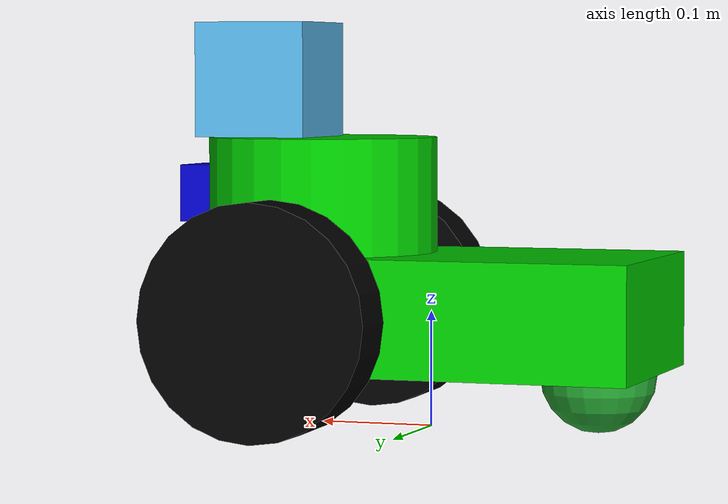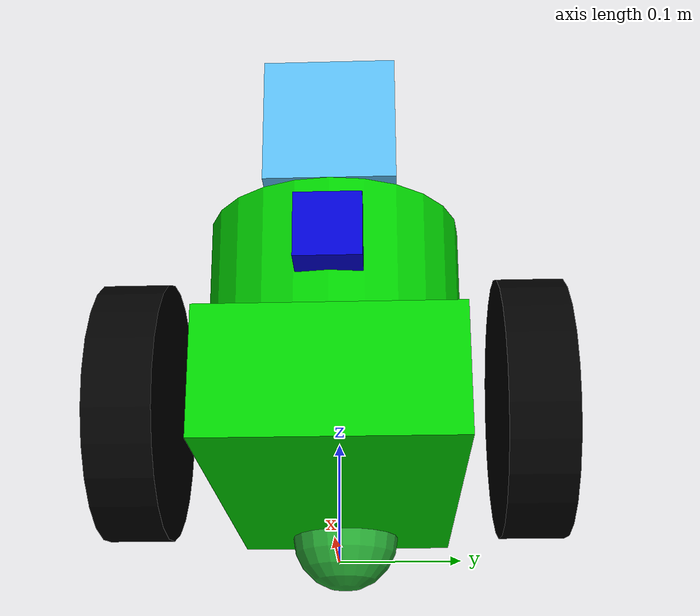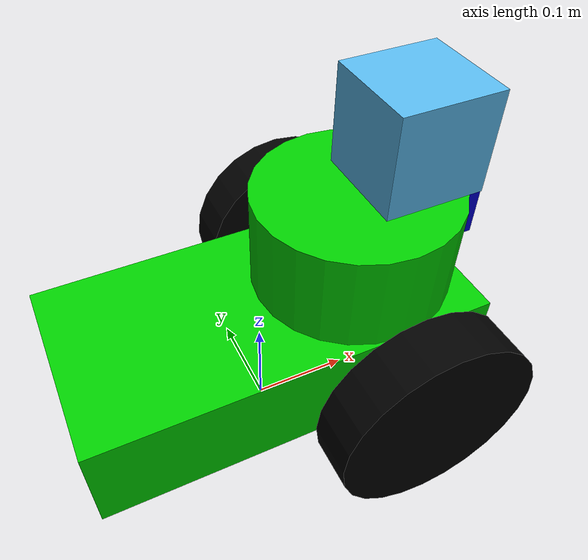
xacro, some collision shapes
<?xml version='1.0'?>

<robot name="uner_bot" xmlns:xacro="http://www.ros.org/wiki/xacro">

  <material name="Blue">
    <color rgba="0.0 0.0 0.8 1.0"/>
  </material>
  <material name="Red">
    <color rgba="0.8 0.0 0.0 1.0"/>
  </material>
  <material name="Green">
    <color rgba="0.0 0.8 0.0 1.0"/>
  </material>
  <material name="Black">
    <color rgba="0.0 0 0.0 1.0"/>
  </material>

  <xacro:include filename="$(find uner_bot)/urdf/UNER_bot.gazebo" />

  <link name="robot_footprint"></link>

  <joint name="robot_footprint_joint" type="fixed">
    <origin xyz="0 0 0.1" rpy="0 0 0" />
    <parent link="robot_footprint"/>
    <child link="chassis" />
  </joint>

  <joint type="continuous" name="left_wheel_hinge">
    <origin xyz="0.1 0.15 0" rpy="0 0 0"/>
    <child link="left_wheel"/>
    <parent link="chassis"/>
    <axis xyz="0 1 0" rpy="0 0 0"/>
    <limit effort="10000" velocity="1000"/>
    <joint_properties damping="1.0" friction="1.0"/>
  </joint>

  <joint type="continuous" name="right_wheel_hinge">
    <origin xyz="0.1 -0.15 0" rpy="0 0 0"/>
    <child link="right_wheel"/>
    <parent link="chassis"/>
    <axis xyz="0 1 0" rpy="0 0 0"/>
    <limit effort="10000" velocity="1000"/>
    <joint_properties damping="1.0" friction="1.0"/>
  </joint>

  <joint name="tower_joint" type="fixed">
    <origin xyz="0 0 0" rpy="0 0 0" />
    <parent link="chassis"/>
    <child link="tower" />
  </joint>

  <joint type="fixed" name="camera_joint">
    <origin xyz="0.2 0 0.1" rpy="0 0 0"/>
    <child link="camera_link"/>
    <parent link="tower"/>
  </joint>

  <joint type="fixed" name="hokuyo_joint">
    <origin xyz=".15 0 .2" rpy="0 0 0"/>
    <child link="hokuyo"/>
    <parent link="tower"/>
  </joint>

  <link name="hokuyo">
    <inertial>
      <mass value="0.1"/>
      <origin xyz="0 0 0" rpy="0 0 0"/>
      <inertia
              ixx="1e-6" ixy="0" ixz="0"
              iyy="1e-6" iyz="0"
              izz="1e-6"
      />
    </inertial>

    <collision name='hokuyo_collision'>
      <origin xyz="0 0 0" rpy="0 0 0"/>
      <geometry>
        <box size="0.1 0.1 0.1"/>
      </geometry>
    </collision>

    <visual name='hokuyo_visual'>
      <origin xyz="0 0 0" rpy="0 0 0"/>
      <geometry>
        <mesh filename="package://uner_bot/meshes/hokuyo.dae"/>
      </geometry>
    </visual>
  </link>

  <link name="camera_link">
    <inertial>
      <mass value="0.1"/>
      <origin xyz="0 0 0" rpy="0 0 0"/>
      <inertia
              ixx="1e-6" ixy="0" ixz="0"
              iyy="1e-6" iyz="0"
              izz="1e-6"
      />
    </inertial>

    <collision name='camera_collision'>
      <origin xyz="0 0 0" rpy="0 0 0"/>
      <geometry>
        <box size="0.05 0.05 0.05"/>
      </geometry>
    </collision>

    <visual name='camera_visual'>
      <origin xyz="0 0 0" rpy="0 0 0"/>
      <geometry>
        <box size="0.05 0.05 0.05"/>
      </geometry>
      <material name="Blue"/>
    </visual>
  </link>

    <link name="camera_rgbd_frame">
    <inertial>
      <mass value="0.0001" />
      <origin xyz="0 0 0" />
      <inertia ixx="0.0001" ixy="0.0" ixz="0.0"
               iyy="0.0001" iyz="0.0"
               izz="0.0001" />
    </inertial>
  </link>

  <joint name="camera_rgbd_joint" type="fixed">
    <origin xyz="0.2 0 0.1" rpy="-1.5707  0.0 -1.5707" />
       <!--origin xyz="0.04 0 0.26" rpy="0 0 0" /-->
    <parent link="camera_link" />
    <child link="camera_rgbd_frame" />
  </joint>

  <link name="tower">
    <inertial>
      <mass value="3.0"/>
      <origin xyz="0.1 0 0.1" rpy="0 0 0"/>
      <inertia
              ixx="0.1" ixy="0" ixz="0"
              iyy="0.1" iyz="0"
              izz="0.1"
      />
    </inertial>

    <collision name='tower_collision'>
      <origin xyz="0.1 0 0.1" rpy="0 0 0"/>
      <geometry>
        <cylinder radius=".1" length= ".1"/>
      </geometry>
    </collision>

    <visual name='tower_visual'>
      <origin xyz="0.1 0 0.1" rpy="0 0 0"/>
      <geometry>
        <cylinder radius=".1" length= ".1"/>
      </geometry>
      <material name="Green"/>
    </visual>
  </link>

  <link name="left_wheel">
    <inertial>
      <mass value="5.0"/>
      <origin xyz="0 0 0" rpy="0 1.5707 1.5707"/>
      <inertia
              ixx="0.1" ixy="0" ixz="0"
              iyy="0.1" iyz="0"
              izz="0.1"
      />
    </inertial>

    <collision name='left_wheel_collision'>
      <origin xyz="0 0 0" rpy="0 1.5707 1.5707"/>
      <geometry>
        <cylinder radius="0.1" length="0.05"/>
      </geometry>
    </collision>

    <visual name='left_wheel_visual'>
      <origin xyz="0 0 0" rpy="0 1.5707 1.5707"/>
      <geometry>
        <cylinder radius="0.1" length="0.05"/>
      </geometry>
      <material name="Black"/>
    </visual>
  </link>

  <link name="right_wheel">
    <inertial>
      <mass value="5.0"/>
      <origin xyz="0 0 0" rpy="0 1.5707 1.5707"/>
      <inertia
              ixx="0.1" ixy="0" ixz="0"
              iyy="0.1" iyz="0"
              izz="0.1"
      />
    </inertial>

    <collision name='right_wheel_collision'>
      <origin xyz="0 0 0" rpy="0 1.5707 1.5707"/>
      <geometry>
        <cylinder radius="0.1" length="0.05"/>
      </geometry>
    </collision>

    <visual name='right_wheel_visual'>
      <origin xyz="0 0 0" rpy="0 1.5707 1.5707"/>
      <geometry>
        <cylinder radius="0.1" length="0.05"/>
      </geometry>
      <material name="Black"/>
    </visual>
  </link>

  <link name='chassis'>
    <pose>0 0 0.1 0 0 0</pose>

    <inertial>
      <mass value="10.0"/>
      <origin xyz="0.0 0 0" rpy=" 0 0 0"/>
      <inertia
              ixx="0.1" ixy="0" ixz="0"
              iyy="0.1" iyz="0"
              izz="0.1"
      />
    </inertial>

    <collision name='collision'>
      <origin xyz="0 0 0" rpy=" 0 0 0"/>
      <geometry>
        <box size=".4 .2 .1"/>
      </geometry>
    </collision>

    <visual name='chassis_visual'>
      <origin xyz="0 0 0" rpy=" 0 0 0"/>
      <geometry>
        <box size=".4 .2 .1"/>
      </geometry>
      <material name="Green"/>
    </visual>

    <collision name='back_caster_collision'>
      <origin xyz="-0.15 0 -0.05" rpy=" 0 0 0"/>
      <geometry>
        <sphere radius="0.05"/>
      </geometry>
      <surface>
        <friction>
          <ode>
            <mu>0</mu>
            <mu2>0</mu2>
            <slip1>1.0</slip1>
            <slip2>1.0</slip2>
          </ode>
        </friction>
      </surface>
    </collision>

    <visual name='back_caster_visual'>
      <origin xyz="-0.15 0 -0.05" rpy=" 0 0 0"/>
      <geometry>
        <sphere radius="0.05"/>
      </geometry>
    </visual>

  </link>

</robot>
